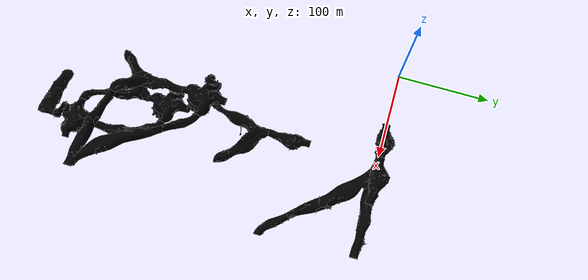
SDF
<sdf version="1.6">
 <world name="cave_circuit_practice_01">
  <include>
   <pose>162.5 -300.0 25.0 0.0 0.0 -1.5708</pose>
   <uri>https://fuel.ignitionrobotics.org/1.0/OpenRobotics/models/Cave 3 Way Elevation 01 Type A</uri>
   <name>tile_3</name>
  </include>
  <include>
   <pose>87.5 -250.0 -50.0 0.0 0.0 1.5708</pose>
   <uri>https://fuel.ignitionrobotics.org/1.0/OpenRobotics/models/Cave 4 Way 01 Type A</uri>
   <name>tile_5</name>
  </include>
  <include>
   <pose>87.5 -200.0 0.0 0.0 0.0 1.5708</pose>
   <uri>https://fuel.ignitionrobotics.org/1.0/OpenRobotics/models/Cave 4 Way 01 Type A</uri>
   <name>tile_7</name>
  </include>
  <include>
   <pose>87.5 -150.0 -50.0 0.0 0.0 -3.14159</pose>
   <uri>https://fuel.ignitionrobotics.org/1.0/OpenRobotics/models/Cave 3 Way 02 Type A</uri>
   <name>tile_9</name>
  </include>
  <include>
   <pose>87.5 -100.0 -50.0 0.0 0.0 0.0</pose>
   <uri>https://fuel.ignitionrobotics.org/1.0/OpenRobotics/models/Cave Straight Type A</uri>
   <name>tile_12</name>
  </include>
  <include>
   <pose>162.5 0.0 0.0 0.0 0.0 1.5708</pose>
   <uri>https://fuel.ignitionrobotics.org/1.0/OpenRobotics/models/Cave 3 Way Elevation 02 Lights Type A</uri>
   <name>tile_19</name>
  </include>
  <include>
   <pose>87.5 -300.0 -50.0 0.0 0.0 -3.14159</pose>
   <uri>https://fuel.ignitionrobotics.org/1.0/OpenRobotics/models/Cave 3 Way 01 Type A</uri>
   <name>tile_22</name>
  </include>
  <include>
   <pose>112.5 -375.0 -50.0 0.0 0.0 -3.14159</pose>
   <uri>https://fuel.ignitionrobotics.org/1.0/OpenRobotics/models/Cave 2 Way 01 Type A</uri>
   <name>tile_24</name>
  </include>
  <include>
   <pose>137.5 -350.0 -50.0 0.0 0.0 3.14159</pose>
   <uri>https://fuel.ignitionrobotics.org/1.0/OpenRobotics/models/Cave 4 Way 01 Type A</uri>
   <name>tile_25</name>
  </include>
  <include>
   <pose>137.5 -300.0 -50.0 0.0 0.0 -3.14159</pose>
   <uri>https://fuel.ignitionrobotics.org/1.0/OpenRobotics/models/Cave Corner 02 Type A</uri>
   <name>tile_28</name>
  </include>
  <include>
   <pose>87.5 -250.0 0.0 0.0 0.0 0.0</pose>
   <uri>https://fuel.ignitionrobotics.org/1.0/OpenRobotics/models/Cave Corner 02 Type A</uri>
   <name>tile_29</name>
  </include>
  <include>
   <pose>87.5 0.0 0.0 0.0 0.0 -1.5708</pose>
   <uri>https://fuel.ignitionrobotics.org/1.0/OpenRobotics/models/Cave Vertical Shaft Cantilevered Type A</uri>
   <name>tile_31</name>
  </include>
  <include>
   <pose>87.5 0.0 0.0 0.0 0.0 -1.5708</pose>
   <uri>https://fuel.ignitionrobotics.org/1.0/OpenRobotics/models/Cave Vertical Shaft Straight Bottom Lights Type A</uri>
   <name>tile_32</name>
  </include>
  <include>
   <pose>137.5 0.0 25.0 0.0 0.0 -1.5708</pose>
   <uri>https://fuel.ignitionrobotics.org/1.0/OpenRobotics/models/Cave Vertical Shaft Straight Top Type A</uri>
   <name>tile_33</name>
  </include>
  <include>
   <pose>62.5 -200.0 0.0 0.0 0.0 1.5708</pose>
   <uri>https://fuel.ignitionrobotics.org/1.0/OpenRobotics/models/Cave Cap Type A</uri>
   <name>cap_100</name>
  </include>
  <include>
   <pose>87.5 -225.0 -50.0 0.0 0.0 0.0</pose>
   <uri>https://fuel.ignitionrobotics.org/1.0/OpenRobotics/models/Cave Cap Type A</uri>
   <name>cap_103</name>
  </include>
  <model name="performer_detector_staging_x1">
   <static>true</static>
   <pose>-12 0 0 0 0 0</pose>
   <plugin filename="libignition-gazebo-performer-detector-system.so" name="ignition::gazebo::systems::PerformerDetector">
    <topic>/subt_performer_detector</topic>
    <geometry><box><size>50 40 4</size></box></geometry>
   </plugin>
   <plugin name="ignition::gazebo::systems::TriggeredPublisher" filename="libignition-gazebo-triggered-publisher-system.so">
    <input type="ignition.msgs.Pose" topic="/subt_performer_detector">
     <match field="header.data">{ key: "frame_id" value: "performer_detector_staging_x1" }</match>
     <match field="header.data">{ key: "state" value: "1" }</match>
     <match field="name">"X1"</match>
    </input>
    <output type="ignition.msgs.Boolean" topic="/model/X1/battery/linear_battery/recharge/start"/>
   </plugin>
   <plugin name="ignition::gazebo::systems::TriggeredPublisher" filename="libignition-gazebo-triggered-publisher-system.so">
    <input type="ignition.msgs.Pose" topic="/subt_performer_detector">
     <match field="header.data">{ key: "frame_id" value: "performer_detector_staging_x1" }</match>
     <match field="header.data">{ key: "state" value: "0" }</match>
     <match field="name">"X1"</match>
    </input>
    <output type="ignition.msgs.Boolean" topic="/model/X1/battery/linear_battery/recharge/stop"/>
   </plugin>
  </model>
  <model name="performer_detector_staging_x2">
   <static>true</static>
   <pose>-12 0 0 0 0 0</pose>
   <plugin filename="libignition-gazebo-performer-detector-system.so" name="ignition::gazebo::systems::PerformerDetector">
    <topic>/subt_performer_detector</topic>
    <geometry><box><size>50 40 4</size></box></geometry>
   </plugin>
   <plugin name="ignition::gazebo::systems::TriggeredPublisher" filename="libignition-gazebo-triggered-publisher-system.so">
    <input type="ignition.msgs.Pose" topic="/subt_performer_detector">
     <match field="header.data">{ key: "frame_id" value: "performer_detector_staging_x2" }</match>
     <match field="header.data">{ key: "state" value: "1" }</match>
     <match field="name">"X2"</match>
    </input>
    <output type="ignition.msgs.Boolean" topic="/model/X1/battery/linear_battery/recharge/start"/>
   </plugin>
   <plugin name="ignition::gazebo::systems::TriggeredPublisher" filename="libignition-gazebo-triggered-publisher-system.so">
    <input type="ignition.msgs.Pose" topic="/subt_performer_detector">
     <match field="header.data">{ key: "frame_id" value: "performer_detector_staging_x2" }</match>
     <match field="header.data">{ key: "state" value: "0" }</match>
     <match field="name">"X2"</match>
    </input>
    <output type="ignition.msgs.Boolean" topic="/model/X1/battery/linear_battery/recharge/stop"/>
   </plugin>
  </model>
  <model name="performer_detector_2">
   <static>true</static>
   <pose>101 -296 4 0 0 0</pose>
   <plugin filename="libignition-gazebo-performer-detector-system.so" name="ignition::gazebo::systems::PerformerDetector">
    <topic>/subt_performer_detector</topic>
    <geometry><box><size>16 16 15</size></box></geometry>
   </plugin>
   <plugin name="ignition::gazebo::systems::TriggeredPublisher" filename="libignition-gazebo-triggered-publisher-system.so">
    <input type="ignition.msgs.Pose" topic="/subt_performer_detector">
     <match field="header.data">{ key: "frame_id" value: "performer_detector_2" }</match>
     <match field="header.data">{ key: "state" value: "0" }</match>
    </input>
    <output type="ignition.msgs.Empty" topic="/model/large_rock_fall_1/breadcrumbs/Rock/deploy"/>
   </plugin>
  </model>
 </world>
</sdf>
